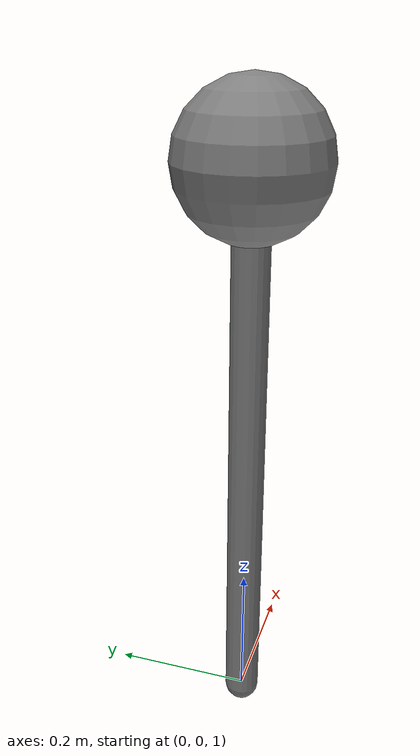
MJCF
<mujoco model="pendulum">

    <!-- Background texture -->
    <asset>
        <texture name="grid" type="2d" builtin="checker" rgb1=".1 .2 .3"
        rgb2=".2 .3 .4" width="100" height="100"/>
        <material name="grid" texture="grid" texrepeat="8 8" reflectance=".2"/>
    </asset>

    <worldbody>
        <camera pos="0.005 -3.036 1.691" xyaxes="1.000 0.002 -0.000 -0.000 0.267 0.964"/>
        <!-- Place background -->
        <geom size="2 2 .01" type="plane" material="grid"/>
        <!-- Static light -->
        <light pos="0 0 3" dir="0 0 -1" diffuse=".8 .8 .8" specular=".3 .3 .3"/>

        <!-- Weightless pendulum -->
        <body name="pendulum_stick" pos="0 0 1">
            <joint name="hinge" type="hinge" axis="0 1 0" pos="0 0 0"/>
            <geom name="pendulum_stick_geom" type="capsule" fromto="0 0 0 0 0 0.8" size="0.025"/>
            <inertial mass="0.0001" diaginertia="1e-5 1e-5 1e-5"  pos="0 0 0"/>

            <!-- Mass on the end of the pendulum -->
            <body name="pendulum" pos="0 0 0.8">
                <geom name="pendulum_geom" type="sphere" size="0.1"/>
                <inertial mass="0.1" diaginertia="1e-5 1e-5 1e-5" pos="0 0 0"/>
            </body>
        </body>

    </worldbody>

    <!-- Force actuator on the cart -->
    <actuator>
        <general joint="hinge"/>
    </actuator>

</mujoco>
